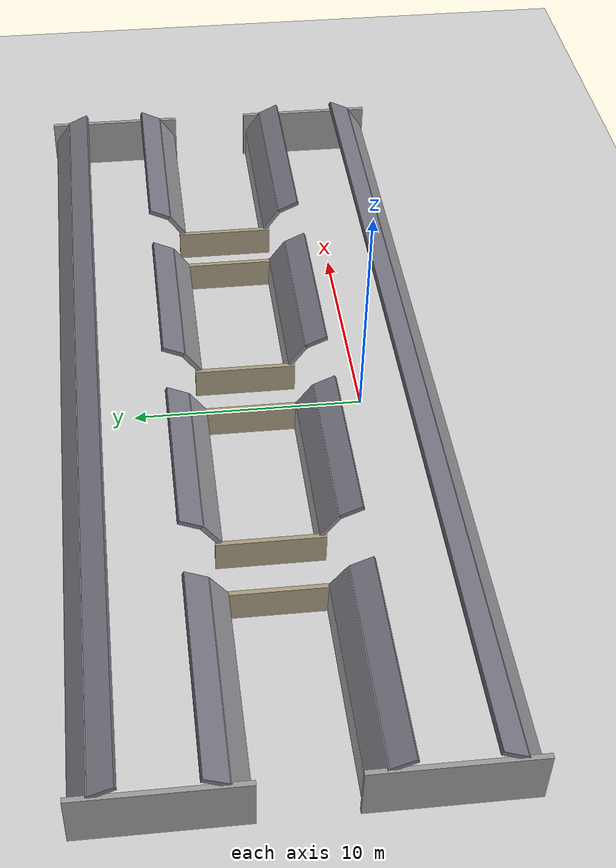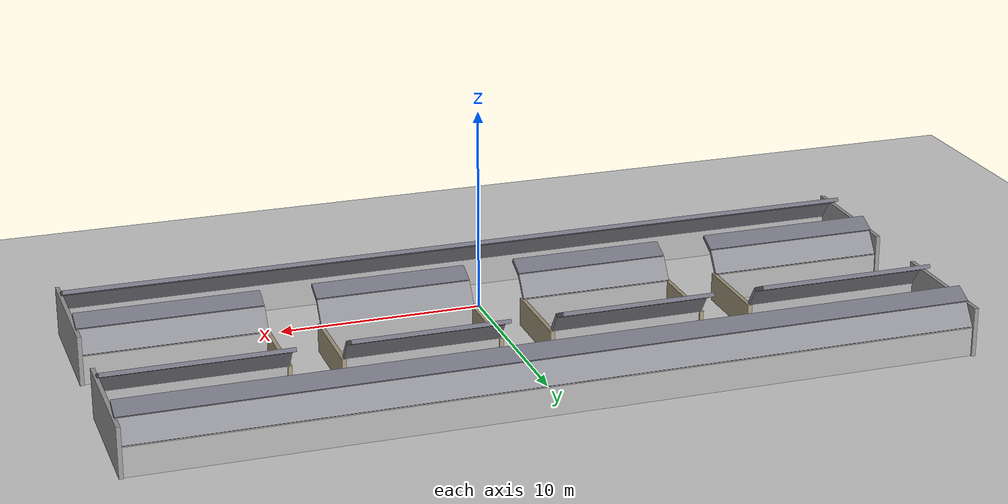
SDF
<sdf version="1.6">
 <world name="tunnel_twin">
  <plugin name="gazebo_ros_state" filename="libgazebo_ros_state.so">
   <ros><namespace>/gazebo</namespace></ros>
   <update_rate>10.0</update_rate>
  </plugin>
  <include><uri>model://sun</uri></include>
  <include><uri>model://ground_plane</uri></include>
  <model name="bore1_south">
   <static>true</static>
   <pose>0.0000 -3.0000 0  0 0 0</pose>
   <link name="base">
    <pose>0.0000 0.0000 0.7000  0.0000 0.0000 0.0000</pose>
    <collision name="collision"><geometry><box><size>40.0000 0.2000 1.4000</size></box></geometry></collision>
    <visual name="visual">
     <geometry><box><size>40.0000 0.2000 1.4000</size></box></geometry>
     <material><ambient>0.7 0.7 0.7 1</ambient></material>
    </visual>
   </link>
   <link name="arch1">
    <pose>0.0000 0.3441 1.8915  -0.6109 0.0000 0.0000</pose>
    <collision name="collision"><geometry><box><size>40.0000 0.2000 1.2000</size></box></geometry></collision>
    <visual name="visual">
     <geometry><box><size>40.0000 0.2000 1.2000</size></box></geometry>
     <material><ambient>0.55 0.55 0.58 1</ambient></material>
    </visual>
   </link>
   <link name="arch2">
    <pose>0.0000 1.1414 2.5943  -1.1345 0.0000 0.0000</pose>
    <collision name="collision"><geometry><box><size>40.0000 0.2000 1.0000</size></box></geometry></collision>
    <visual name="visual">
     <geometry><box><size>40.0000 0.2000 1.0000</size></box></geometry>
     <material><ambient>0.45 0.45 0.5 1</ambient></material>
    </visual>
   </link>
  </model>
  <model name="bore2_north">
   <static>true</static>
   <pose>0.0000 13.0000 0  0 0 0</pose>
   <link name="base">
    <pose>0.0000 0.0000 0.7000  0.0000 0.0000 0.0000</pose>
    <collision name="collision"><geometry><box><size>40.0000 0.2000 1.4000</size></box></geometry></collision>
    <visual name="visual">
     <geometry><box><size>40.0000 0.2000 1.4000</size></box></geometry>
     <material><ambient>0.7 0.7 0.7 1</ambient></material>
    </visual>
   </link>
   <link name="arch1">
    <pose>0.0000 -0.3441 1.8915  0.6109 0.0000 0.0000</pose>
    <collision name="collision"><geometry><box><size>40.0000 0.2000 1.2000</size></box></geometry></collision>
    <visual name="visual">
     <geometry><box><size>40.0000 0.2000 1.2000</size></box></geometry>
     <material><ambient>0.55 0.55 0.58 1</ambient></material>
    </visual>
   </link>
   <link name="arch2">
    <pose>0.0000 -1.1414 2.5943  1.1345 0.0000 0.0000</pose>
    <collision name="collision"><geometry><box><size>40.0000 0.2000 1.0000</size></box></geometry></collision>
    <visual name="visual">
     <geometry><box><size>40.0000 0.2000 1.0000</size></box></geometry>
     <material><ambient>0.45 0.45 0.5 1</ambient></material>
    </visual>
   </link>
  </model>
  <model name="bore1_north_0">
   <static>true</static>
   <pose>-15.6250 3.0000 0  0 0 0</pose>
   <link name="base">
    <pose>0.0000 0.0000 0.7000  0.0000 0.0000 0.0000</pose>
    <collision name="collision"><geometry><box><size>8.7500 0.2000 1.4000</size></box></geometry></collision>
    <visual name="visual">
     <geometry><box><size>8.7500 0.2000 1.4000</size></box></geometry>
     <material><ambient>0.7 0.7 0.7 1</ambient></material>
    </visual>
   </link>
   <link name="arch1">
    <pose>0.0000 -0.3441 1.8915  0.6109 0.0000 0.0000</pose>
    <collision name="collision"><geometry><box><size>8.7500 0.2000 1.2000</size></box></geometry></collision>
    <visual name="visual">
     <geometry><box><size>8.7500 0.2000 1.2000</size></box></geometry>
     <material><ambient>0.55 0.55 0.58 1</ambient></material>
    </visual>
   </link>
   <link name="arch2">
    <pose>0.0000 -1.1414 2.5943  1.1345 0.0000 0.0000</pose>
    <collision name="collision"><geometry><box><size>8.7500 0.2000 1.0000</size></box></geometry></collision>
    <visual name="visual">
     <geometry><box><size>8.7500 0.2000 1.0000</size></box></geometry>
     <material><ambient>0.45 0.45 0.5 1</ambient></material>
    </visual>
   </link>
  </model>
  <model name="bore2_south_0">
   <static>true</static>
   <pose>-15.6250 7.0000 0  0 0 0</pose>
   <link name="base">
    <pose>0.0000 0.0000 0.7000  0.0000 0.0000 0.0000</pose>
    <collision name="collision"><geometry><box><size>8.7500 0.2000 1.4000</size></box></geometry></collision>
    <visual name="visual">
     <geometry><box><size>8.7500 0.2000 1.4000</size></box></geometry>
     <material><ambient>0.7 0.7 0.7 1</ambient></material>
    </visual>
   </link>
   <link name="arch1">
    <pose>0.0000 0.3441 1.8915  -0.6109 0.0000 0.0000</pose>
    <collision name="collision"><geometry><box><size>8.7500 0.2000 1.2000</size></box></geometry></collision>
    <visual name="visual">
     <geometry><box><size>8.7500 0.2000 1.2000</size></box></geometry>
     <material><ambient>0.55 0.55 0.58 1</ambient></material>
    </visual>
   </link>
   <link name="arch2">
    <pose>0.0000 1.1414 2.5943  -1.1345 0.0000 0.0000</pose>
    <collision name="collision"><geometry><box><size>8.7500 0.2000 1.0000</size></box></geometry></collision>
    <visual name="visual">
     <geometry><box><size>8.7500 0.2000 1.0000</size></box></geometry>
     <material><ambient>0.45 0.45 0.5 1</ambient></material>
    </visual>
   </link>
  </model>
  <model name="bore1_north_1">
   <static>true</static>
   <pose>-5.0000 3.0000 0  0 0 0</pose>
   <link name="base">
    <pose>0.0000 0.0000 0.7000  0.0000 0.0000 0.0000</pose>
    <collision name="collision"><geometry><box><size>7.5000 0.2000 1.4000</size></box></geometry></collision>
    <visual name="visual">
     <geometry><box><size>7.5000 0.2000 1.4000</size></box></geometry>
     <material><ambient>0.7 0.7 0.7 1</ambient></material>
    </visual>
   </link>
   <link name="arch1">
    <pose>0.0000 -0.3441 1.8915  0.6109 0.0000 0.0000</pose>
    <collision name="collision"><geometry><box><size>7.5000 0.2000 1.2000</size></box></geometry></collision>
    <visual name="visual">
     <geometry><box><size>7.5000 0.2000 1.2000</size></box></geometry>
     <material><ambient>0.55 0.55 0.58 1</ambient></material>
    </visual>
   </link>
   <link name="arch2">
    <pose>0.0000 -1.1414 2.5943  1.1345 0.0000 0.0000</pose>
    <collision name="collision"><geometry><box><size>7.5000 0.2000 1.0000</size></box></geometry></collision>
    <visual name="visual">
     <geometry><box><size>7.5000 0.2000 1.0000</size></box></geometry>
     <material><ambient>0.45 0.45 0.5 1</ambient></material>
    </visual>
   </link>
  </model>
  <model name="bore2_south_1">
   <static>true</static>
   <pose>-5.0000 7.0000 0  0 0 0</pose>
   <link name="base">
    <pose>0.0000 0.0000 0.7000  0.0000 0.0000 0.0000</pose>
    <collision name="collision"><geometry><box><size>7.5000 0.2000 1.4000</size></box></geometry></collision>
    <visual name="visual">
     <geometry><box><size>7.5000 0.2000 1.4000</size></box></geometry>
     <material><ambient>0.7 0.7 0.7 1</ambient></material>
    </visual>
   </link>
   <link name="arch1">
    <pose>0.0000 0.3441 1.8915  -0.6109 0.0000 0.0000</pose>
    <collision name="collision"><geometry><box><size>7.5000 0.2000 1.2000</size></box></geometry></collision>
    <visual name="visual">
     <geometry><box><size>7.5000 0.2000 1.2000</size></box></geometry>
     <material><ambient>0.55 0.55 0.58 1</ambient></material>
    </visual>
   </link>
   <link name="arch2">
    <pose>0.0000 1.1414 2.5943  -1.1345 0.0000 0.0000</pose>
    <collision name="collision"><geometry><box><size>7.5000 0.2000 1.0000</size></box></geometry></collision>
    <visual name="visual">
     <geometry><box><size>7.5000 0.2000 1.0000</size></box></geometry>
     <material><ambient>0.45 0.45 0.5 1</ambient></material>
    </visual>
   </link>
  </model>
  <model name="bore1_north_2">
   <static>true</static>
   <pose>5.0000 3.0000 0  0 0 0</pose>
   <link name="base">
    <pose>0.0000 0.0000 0.7000  0.0000 0.0000 0.0000</pose>
    <collision name="collision"><geometry><box><size>7.5000 0.2000 1.4000</size></box></geometry></collision>
    <visual name="visual">
     <geometry><box><size>7.5000 0.2000 1.4000</size></box></geometry>
     <material><ambient>0.7 0.7 0.7 1</ambient></material>
    </visual>
   </link>
   <link name="arch1">
    <pose>0.0000 -0.3441 1.8915  0.6109 0.0000 0.0000</pose>
    <collision name="collision"><geometry><box><size>7.5000 0.2000 1.2000</size></box></geometry></collision>
    <visual name="visual">
     <geometry><box><size>7.5000 0.2000 1.2000</size></box></geometry>
     <material><ambient>0.55 0.55 0.58 1</ambient></material>
    </visual>
   </link>
   <link name="arch2">
    <pose>0.0000 -1.1414 2.5943  1.1345 0.0000 0.0000</pose>
    <collision name="collision"><geometry><box><size>7.5000 0.2000 1.0000</size></box></geometry></collision>
    <visual name="visual">
     <geometry><box><size>7.5000 0.2000 1.0000</size></box></geometry>
     <material><ambient>0.45 0.45 0.5 1</ambient></material>
    </visual>
   </link>
  </model>
  <model name="bore2_south_2">
   <static>true</static>
   <pose>5.0000 7.0000 0  0 0 0</pose>
   <link name="base">
    <pose>0.0000 0.0000 0.7000  0.0000 0.0000 0.0000</pose>
    <collision name="collision"><geometry><box><size>7.5000 0.2000 1.4000</size></box></geometry></collision>
    <visual name="visual">
     <geometry><box><size>7.5000 0.2000 1.4000</size></box></geometry>
     <material><ambient>0.7 0.7 0.7 1</ambient></material>
    </visual>
   </link>
   <link name="arch1">
    <pose>0.0000 0.3441 1.8915  -0.6109 0.0000 0.0000</pose>
    <collision name="collision"><geometry><box><size>7.5000 0.2000 1.2000</size></box></geometry></collision>
    <visual name="visual">
     <geometry><box><size>7.5000 0.2000 1.2000</size></box></geometry>
     <material><ambient>0.55 0.55 0.58 1</ambient></material>
    </visual>
   </link>
   <link name="arch2">
    <pose>0.0000 1.1414 2.5943  -1.1345 0.0000 0.0000</pose>
    <collision name="collision"><geometry><box><size>7.5000 0.2000 1.0000</size></box></geometry></collision>
    <visual name="visual">
     <geometry><box><size>7.5000 0.2000 1.0000</size></box></geometry>
     <material><ambient>0.45 0.45 0.5 1</ambient></material>
    </visual>
   </link>
  </model>
  <model name="bore1_north_3">
   <static>true</static>
   <pose>15.6250 3.0000 0  0 0 0</pose>
   <link name="base">
    <pose>0.0000 0.0000 0.7000  0.0000 0.0000 0.0000</pose>
    <collision name="collision"><geometry><box><size>8.7500 0.2000 1.4000</size></box></geometry></collision>
    <visual name="visual">
     <geometry><box><size>8.7500 0.2000 1.4000</size></box></geometry>
     <material><ambient>0.7 0.7 0.7 1</ambient></material>
    </visual>
   </link>
   <link name="arch1">
    <pose>0.0000 -0.3441 1.8915  0.6109 0.0000 0.0000</pose>
    <collision name="collision"><geometry><box><size>8.7500 0.2000 1.2000</size></box></geometry></collision>
    <visual name="visual">
     <geometry><box><size>8.7500 0.2000 1.2000</size></box></geometry>
     <material><ambient>0.55 0.55 0.58 1</ambient></material>
    </visual>
   </link>
   <link name="arch2">
    <pose>0.0000 -1.1414 2.5943  1.1345 0.0000 0.0000</pose>
    <collision name="collision"><geometry><box><size>8.7500 0.2000 1.0000</size></box></geometry></collision>
    <visual name="visual">
     <geometry><box><size>8.7500 0.2000 1.0000</size></box></geometry>
     <material><ambient>0.45 0.45 0.5 1</ambient></material>
    </visual>
   </link>
  </model>
  <model name="bore2_south_3">
   <static>true</static>
   <pose>15.6250 7.0000 0  0 0 0</pose>
   <link name="base">
    <pose>0.0000 0.0000 0.7000  0.0000 0.0000 0.0000</pose>
    <collision name="collision"><geometry><box><size>8.7500 0.2000 1.4000</size></box></geometry></collision>
    <visual name="visual">
     <geometry><box><size>8.7500 0.2000 1.4000</size></box></geometry>
     <material><ambient>0.7 0.7 0.7 1</ambient></material>
    </visual>
   </link>
   <link name="arch1">
    <pose>0.0000 0.3441 1.8915  -0.6109 0.0000 0.0000</pose>
    <collision name="collision"><geometry><box><size>8.7500 0.2000 1.2000</size></box></geometry></collision>
    <visual name="visual">
     <geometry><box><size>8.7500 0.2000 1.2000</size></box></geometry>
     <material><ambient>0.55 0.55 0.58 1</ambient></material>
    </visual>
   </link>
   <link name="arch2">
    <pose>0.0000 1.1414 2.5943  -1.1345 0.0000 0.0000</pose>
    <collision name="collision"><geometry><box><size>8.7500 0.2000 1.0000</size></box></geometry></collision>
    <visual name="visual">
     <geometry><box><size>8.7500 0.2000 1.0000</size></box></geometry>
     <material><ambient>0.45 0.45 0.5 1</ambient></material>
    </visual>
   </link>
  </model>
  <model name="bore1_west_end">
   <static>true</static>
   <pose>-20.0000 0.0000 1.2000  0 0 1.5708</pose>
   <link name="link">
    <collision name="collision"><geometry><box><size>6.4000 0.2 2.4000</size></box></geometry></collision>
    <visual name="visual">
     <geometry><box><size>6.4000 0.2 2.4000</size></box></geometry>
     <material><ambient>0.6 0.6 0.6 1</ambient></material>
    </visual>
   </link>
  </model>
  <model name="bore1_east_end">
   <static>true</static>
   <pose>20.0000 0.0000 1.2000  0 0 1.5708</pose>
   <link name="link">
    <collision name="collision"><geometry><box><size>6.4000 0.2 2.4000</size></box></geometry></collision>
    <visual name="visual">
     <geometry><box><size>6.4000 0.2 2.4000</size></box></geometry>
     <material><ambient>0.6 0.6 0.6 1</ambient></material>
    </visual>
   </link>
  </model>
  <model name="bore2_west_end">
   <static>true</static>
   <pose>-20.0000 10.0000 1.2000  0 0 1.5708</pose>
   <link name="link">
    <collision name="collision"><geometry><box><size>6.4000 0.2 2.4000</size></box></geometry></collision>
    <visual name="visual">
     <geometry><box><size>6.4000 0.2 2.4000</size></box></geometry>
     <material><ambient>0.6 0.6 0.6 1</ambient></material>
    </visual>
   </link>
  </model>
  <model name="bore2_east_end">
   <static>true</static>
   <pose>20.0000 10.0000 1.2000  0 0 1.5708</pose>
   <link name="link">
    <collision name="collision"><geometry><box><size>6.4000 0.2 2.4000</size></box></geometry></collision>
    <visual name="visual">
     <geometry><box><size>6.4000 0.2 2.4000</size></box></geometry>
     <material><ambient>0.6 0.6 0.6 1</ambient></material>
    </visual>
   </link>
  </model>
  <model name="passage_pw10_west">
   <static>true</static>
   <pose>-11.2500 5.0000 0.7000  0 0 1.5708</pose>
   <link name="link">
    <collision name="collision"><geometry><box><size>4.4000 0.2 1.4000</size></box></geometry></collision>
    <visual name="visual">
     <geometry><box><size>4.4000 0.2 1.4000</size></box></geometry>
     <material><ambient>0.65 0.6 0.5 1</ambient></material>
    </visual>
   </link>
  </model>
  <model name="passage_pw10_east">
   <static>true</static>
   <pose>-8.7500 5.0000 0.7000  0 0 1.5708</pose>
   <link name="link">
    <collision name="collision"><geometry><box><size>4.4000 0.2 1.4000</size></box></geometry></collision>
    <visual name="visual">
     <geometry><box><size>4.4000 0.2 1.4000</size></box></geometry>
     <material><ambient>0.65 0.6 0.5 1</ambient></material>
    </visual>
   </link>
  </model>
  <model name="passage_pe0_west">
   <static>true</static>
   <pose>-1.2500 5.0000 0.7000  0 0 1.5708</pose>
   <link name="link">
    <collision name="collision"><geometry><box><size>4.4000 0.2 1.4000</size></box></geometry></collision>
    <visual name="visual">
     <geometry><box><size>4.4000 0.2 1.4000</size></box></geometry>
     <material><ambient>0.65 0.6 0.5 1</ambient></material>
    </visual>
   </link>
  </model>
  <model name="passage_pe0_east">
   <static>true</static>
   <pose>1.2500 5.0000 0.7000  0 0 1.5708</pose>
   <link name="link">
    <collision name="collision"><geometry><box><size>4.4000 0.2 1.4000</size></box></geometry></collision>
    <visual name="visual">
     <geometry><box><size>4.4000 0.2 1.4000</size></box></geometry>
     <material><ambient>0.65 0.6 0.5 1</ambient></material>
    </visual>
   </link>
  </model>
  <model name="passage_pe10_west">
   <static>true</static>
   <pose>8.7500 5.0000 0.7000  0 0 1.5708</pose>
   <link name="link">
    <collision name="collision"><geometry><box><size>4.4000 0.2 1.4000</size></box></geometry></collision>
    <visual name="visual">
     <geometry><box><size>4.4000 0.2 1.4000</size></box></geometry>
     <material><ambient>0.65 0.6 0.5 1</ambient></material>
    </visual>
   </link>
  </model>
  <model name="passage_pe10_east">
   <static>true</static>
   <pose>11.2500 5.0000 0.7000  0 0 1.5708</pose>
   <link name="link">
    <collision name="collision"><geometry><box><size>4.4000 0.2 1.4000</size></box></geometry></collision>
    <visual name="visual">
     <geometry><box><size>4.4000 0.2 1.4000</size></box></geometry>
     <material><ambient>0.65 0.6 0.5 1</ambient></material>
    </visual>
   </link>
  </model>
 </world>
</sdf>
